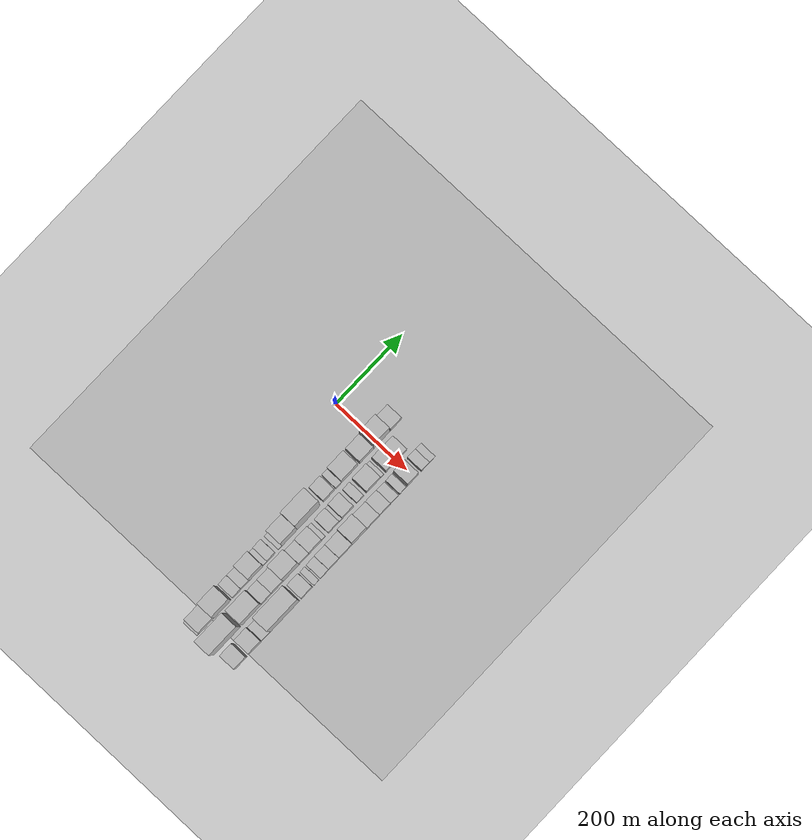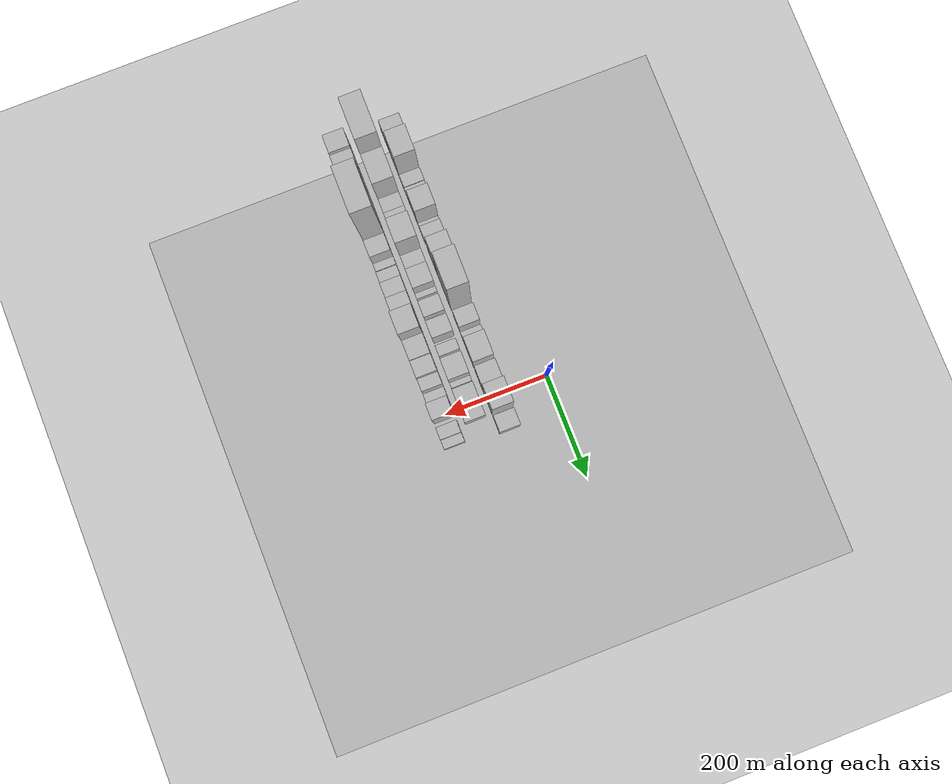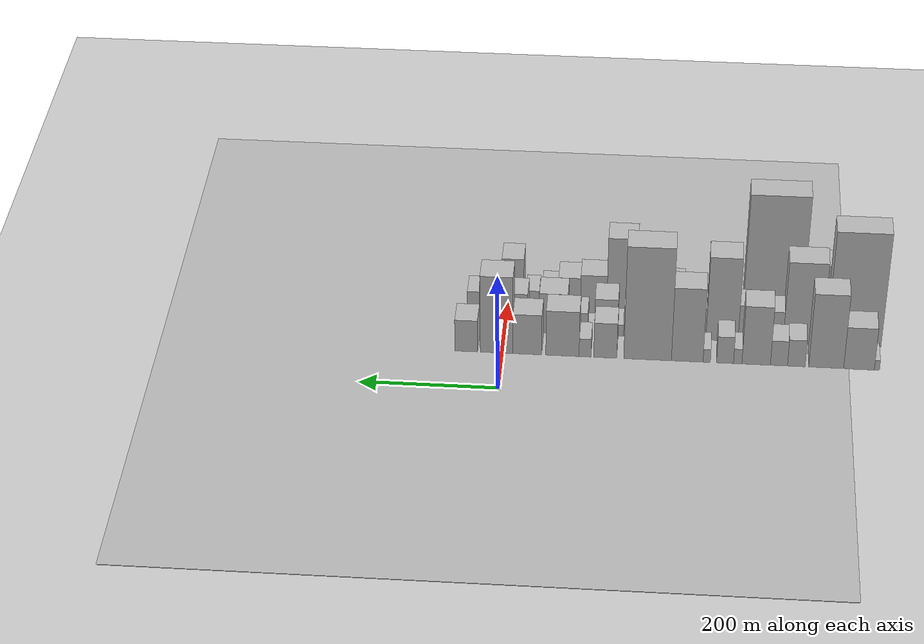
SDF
<sdf version="1.6">
 <world name="default">
  <include><name>ground_plane_1</name><uri>model://HANNAS_ground_plane</uri></include>
  <include>
   <name>ground_plane_2</name>
   <uri>model://HANNAS_ground_plane</uri>
   <pose>100 0 0  0 0 0</pose>
  </include>
  <model name="building_1">
   <static>1</static>
   <pose>100.0000 -540.2744 0 0.000000 0.000000 0.000000</pose>
   <link name="link">
    <pose>0 0 9.00 0 0 0</pose>
    <collision name="collision"><geometry><box><size>40.0000 7.4513 18.0000</size></box></geometry></collision>
    <visual name="visual">
     <cast_shadows>0</cast_shadows>
     <geometry><box><size>40.0000 7.4513 18.0000</size></box></geometry>
     <material>
      <script>
       <uri>model://HANNAS_wall/materials/scripts</uri>
       <uri>model://HANNAS_wall/materials/textures</uri>
       <name>vrc/HANNAS_wall</name>
      </script>
     </material>
    </visual>
   </link>
  </model>
  <model name="building_2">
   <static>1</static>
   <pose>100.0000 -514.5848 0 0.000000 0.000000 0.000000</pose>
   <link name="link">
    <pose>0 0 37.50 0 0 0</pose>
    <collision name="collision"><geometry><box><size>40.0000 43.9278 75.0000</size></box></geometry></collision>
    <visual name="visual">
     <cast_shadows>0</cast_shadows>
     <geometry><box><size>40.0000 43.9278 75.0000</size></box></geometry>
     <material>
      <script>
       <uri>model://HANNAS_wall/materials/scripts</uri>
       <uri>model://HANNAS_wall/materials/textures</uri>
       <name>vrc/HANNAS_wall</name>
      </script>
     </material>
    </visual>
   </link>
  </model>
  <model name="building_3">
   <static>1</static>
   <pose>100.0000 -467.5516 0 0.000000 0.000000 0.000000</pose>
   <link name="link">
    <pose>0 0 66.00 0 0 0</pose>
    <collision name="collision"><geometry><box><size>40.0000 50.1385 132.0000</size></box></geometry></collision>
    <visual name="visual">
     <cast_shadows>0</cast_shadows>
     <geometry><box><size>40.0000 50.1385 132.0000</size></box></geometry>
     <material>
      <script>
       <uri>model://HANNAS_wall/materials/scripts</uri>
       <uri>model://HANNAS_wall/materials/textures</uri>
       <name>vrc/HANNAS_wall</name>
      </script>
     </material>
    </visual>
   </link>
  </model>
  <model name="building_4">
   <static>1</static>
   <pose>100.0000 -424.7385 0 0.000000 0.000000 0.000000</pose>
   <link name="link">
    <pose>0 0 24.00 0 0 0</pose>
    <collision name="collision"><geometry><box><size>40.0000 25.4878 48.0000</size></box></geometry></collision>
    <visual name="visual">
     <cast_shadows>0</cast_shadows>
     <geometry><box><size>40.0000 25.4878 48.0000</size></box></geometry>
     <material>
      <script>
       <uri>model://HANNAS_wall/materials/scripts</uri>
       <uri>model://HANNAS_wall/materials/textures</uri>
       <name>vrc/HANNAS_wall</name>
      </script>
     </material>
    </visual>
   </link>
  </model>
  <model name="building_5">
   <static>1</static>
   <pose>100.0000 -399.7430 0 0.000000 0.000000 0.000000</pose>
   <link name="link">
    <pose>0 0 22.50 0 0 0</pose>
    <collision name="collision"><geometry><box><size>40.0000 24.5031 45.0000</size></box></geometry></collision>
    <visual name="visual">
     <cast_shadows>0</cast_shadows>
     <geometry><box><size>40.0000 24.5031 45.0000</size></box></geometry>
     <material>
      <script>
       <uri>model://HANNAS_wall/materials/scripts</uri>
       <uri>model://HANNAS_wall/materials/textures</uri>
       <name>vrc/HANNAS_wall</name>
      </script>
     </material>
    </visual>
   </link>
  </model>
  <model name="building_6">
   <static>1</static>
   <pose>100.0000 -367.0211 0 0.000000 0.000000 0.000000</pose>
   <link name="link">
    <pose>0 0 52.50 0 0 0</pose>
    <collision name="collision"><geometry><box><size>40.0000 40.9406 105.0000</size></box></geometry></collision>
    <visual name="visual">
     <cast_shadows>0</cast_shadows>
     <geometry><box><size>40.0000 40.9406 105.0000</size></box></geometry>
     <material>
      <script>
       <uri>model://HANNAS_wall/materials/scripts</uri>
       <uri>model://HANNAS_wall/materials/textures</uri>
       <name>vrc/HANNAS_wall</name>
      </script>
     </material>
    </visual>
   </link>
  </model>
  <model name="building_7">
   <static>1</static>
   <pose>100.0000 -340.4954 0 0.000000 0.000000 0.000000</pose>
   <link name="link">
    <pose>0 0 13.50 0 0 0</pose>
    <collision name="collision"><geometry><box><size>40.0000 12.1108 27.0000</size></box></geometry></collision>
    <visual name="visual">
     <cast_shadows>0</cast_shadows>
     <geometry><box><size>40.0000 12.1108 27.0000</size></box></geometry>
     <material>
      <script>
       <uri>model://HANNAS_wall/materials/scripts</uri>
       <uri>model://HANNAS_wall/materials/textures</uri>
       <name>vrc/HANNAS_wall</name>
      </script>
     </material>
    </visual>
   </link>
  </model>
  <model name="building_8">
   <static>1</static>
   <pose>100.0000 -322.2776 0 0.000000 0.000000 0.000000</pose>
   <link name="link">
    <pose>0 0 24.00 0 0 0</pose>
    <collision name="collision"><geometry><box><size>40.0000 24.3248 48.0000</size></box></geometry></collision>
    <visual name="visual">
     <cast_shadows>0</cast_shadows>
     <geometry><box><size>40.0000 24.3248 48.0000</size></box></geometry>
     <material>
      <script>
       <uri>model://HANNAS_wall/materials/scripts</uri>
       <uri>model://HANNAS_wall/materials/textures</uri>
       <name>vrc/HANNAS_wall</name>
      </script>
     </material>
    </visual>
   </link>
  </model>
  <model name="building_9">
   <static>1</static>
   <pose>100.0000 -295.8266 0 0.000000 0.000000 0.000000</pose>
   <link name="link">
    <pose>0 0 12.00 0 0 0</pose>
    <collision name="collision"><geometry><box><size>40.0000 10.5772 24.0000</size></box></geometry></collision>
    <visual name="visual">
     <cast_shadows>0</cast_shadows>
     <geometry><box><size>40.0000 10.5772 24.0000</size></box></geometry>
     <material>
      <script>
       <uri>model://HANNAS_wall/materials/scripts</uri>
       <uri>model://HANNAS_wall/materials/textures</uri>
       <name>vrc/HANNAS_wall</name>
      </script>
     </material>
    </visual>
   </link>
  </model>
  <model name="building_10">
   <static>1</static>
   <pose>100.0000 -267.7011 0 0.000000 0.000000 0.000000</pose>
   <link name="link">
    <pose>0 0 66.00 0 0 0</pose>
    <collision name="collision"><geometry><box><size>40.0000 45.6738 132.0000</size></box></geometry></collision>
    <visual name="visual">
     <cast_shadows>0</cast_shadows>
     <geometry><box><size>40.0000 45.6738 132.0000</size></box></geometry>
     <material>
      <script>
       <uri>model://HANNAS_wall/materials/scripts</uri>
       <uri>model://HANNAS_wall/materials/textures</uri>
       <name>vrc/HANNAS_wall</name>
      </script>
     </material>
    </visual>
   </link>
  </model>
  <model name="building_11">
   <static>1</static>
   <pose>100.0000 -210.4352 0 0.000000 0.000000 0.000000</pose>
   <link name="link">
    <pose>0 0 100.50 0 0 0</pose>
    <collision name="collision"><geometry><box><size>40.0000 68.8580 201.0000</size></box></geometry></collision>
    <visual name="visual">
     <cast_shadows>0</cast_shadows>
     <geometry><box><size>40.0000 68.8580 201.0000</size></box></geometry>
     <material>
      <script>
       <uri>model://HANNAS_wall/materials/scripts</uri>
       <uri>model://HANNAS_wall/materials/textures</uri>
       <name>vrc/HANNAS_wall</name>
      </script>
     </material>
    </visual>
   </link>
  </model>
  <model name="building_12">
   <static>1</static>
   <pose>100.0000 -149.3027 0 0.000000 0.000000 0.000000</pose>
   <link name="link">
    <pose>0 0 31.50 0 0 0</pose>
    <collision name="collision"><geometry><box><size>40.0000 33.4069 63.0000</size></box></geometry></collision>
    <visual name="visual">
     <cast_shadows>0</cast_shadows>
     <geometry><box><size>40.0000 33.4069 63.0000</size></box></geometry>
     <material>
      <script>
       <uri>model://HANNAS_wall/materials/scripts</uri>
       <uri>model://HANNAS_wall/materials/textures</uri>
       <name>vrc/HANNAS_wall</name>
      </script>
     </material>
    </visual>
   </link>
  </model>
  <model name="building_13">
   <static>1</static>
   <pose>100.0000 -119.9643 0 0.000000 0.000000 0.000000</pose>
   <link name="link">
    <pose>0 0 16.50 0 0 0</pose>
    <collision name="collision"><geometry><box><size>40.0000 17.2699 33.0000</size></box></geometry></collision>
    <visual name="visual">
     <cast_shadows>0</cast_shadows>
     <geometry><box><size>40.0000 17.2699 33.0000</size></box></geometry>
     <material>
      <script>
       <uri>model://HANNAS_wall/materials/scripts</uri>
       <uri>model://HANNAS_wall/materials/textures</uri>
       <name>vrc/HANNAS_wall</name>
      </script>
     </material>
    </visual>
   </link>
  </model>
  <model name="building_14">
   <static>1</static>
   <pose>100.0000 -87.2110 0 0.000000 0.000000 0.000000</pose>
   <link name="link">
    <pose>0 0 40.50 0 0 0</pose>
    <collision name="collision"><geometry><box><size>40.0000 48.2367 81.0000</size></box></geometry></collision>
    <visual name="visual">
     <cast_shadows>0</cast_shadows>
     <geometry><box><size>40.0000 48.2367 81.0000</size></box></geometry>
     <material>
      <script>
       <uri>model://HANNAS_wall/materials/scripts</uri>
       <uri>model://HANNAS_wall/materials/textures</uri>
       <name>vrc/HANNAS_wall</name>
      </script>
     </material>
    </visual>
   </link>
  </model>
  <model name="building_15">
   <static>1</static>
   <pose>100.0000 -36.2434 0 0.000000 0.000000 0.000000</pose>
   <link name="link">
    <pose>0 0 36.00 0 0 0</pose>
    <collision name="collision"><geometry><box><size>40.0000 41.6985 72.0000</size></box></geometry></collision>
    <visual name="visual">
     <cast_shadows>0</cast_shadows>
     <geometry><box><size>40.0000 41.6985 72.0000</size></box></geometry>
     <material>
      <script>
       <uri>model://HANNAS_wall/materials/scripts</uri>
       <uri>model://HANNAS_wall/materials/textures</uri>
       <name>vrc/HANNAS_wall</name>
      </script>
     </material>
    </visual>
   </link>
  </model>
  <model name="building_16">
   <static>1</static>
   <pose>100.0000 8.3210 0 0.000000 0.000000 0.000000</pose>
   <link name="link">
    <pose>0 0 69.00 0 0 0</pose>
    <collision name="collision"><geometry><box><size>40.0000 47.4301 138.0000</size></box></geometry></collision>
    <visual name="visual">
     <cast_shadows>0</cast_shadows>
     <geometry><box><size>40.0000 47.4301 138.0000</size></box></geometry>
     <material>
      <script>
       <uri>model://HANNAS_wall/materials/scripts</uri>
       <uri>model://HANNAS_wall/materials/textures</uri>
       <name>vrc/HANNAS_wall</name>
      </script>
     </material>
    </visual>
   </link>
  </model>
  <model name="building_17">
   <static>1</static>
   <pose>100.0000 52.4644 0 0.000000 0.000000 0.000000</pose>
   <link name="link">
    <pose>0 0 28.50 0 0 0</pose>
    <collision name="collision"><geometry><box><size>40.0000 32.8567 57.0000</size></box></geometry></collision>
    <visual name="visual">
     <cast_shadows>0</cast_shadows>
     <geometry><box><size>40.0000 32.8567 57.0000</size></box></geometry>
     <material>
      <script>
       <uri>model://HANNAS_wall/materials/scripts</uri>
       <uri>model://HANNAS_wall/materials/textures</uri>
       <name>vrc/HANNAS_wall</name>
      </script>
     </material>
    </visual>
   </link>
  </model>
  <model name="building_36">
   <static>1</static>
   <pose>152.0000 -508.6156 0 0.000000 0.000000 0.000000</pose>
   <link name="link">
    <pose>0 0 102.00 0 0 0</pose>
    <collision name="collision"><geometry><box><size>40.0000 78.7689 204.0000</size></box></geometry></collision>
    <visual name="visual">
     <cast_shadows>0</cast_shadows>
     <geometry><box><size>40.0000 78.7689 204.0000</size></box></geometry>
     <material>
      <script>
       <uri>model://HANNAS_wall/materials/scripts</uri>
       <uri>model://HANNAS_wall/materials/textures</uri>
       <name>vrc/HANNAS_wall</name>
      </script>
     </material>
    </visual>
   </link>
  </model>
  <model name="building_37">
   <static>1</static>
   <pose>152.0000 -434.7023 0 0.000000 0.000000 0.000000</pose>
   <link name="link">
    <pose>0 0 73.50 0 0 0</pose>
    <collision name="collision"><geometry><box><size>40.0000 57.0577 147.0000</size></box></geometry></collision>
    <visual name="visual">
     <cast_shadows>0</cast_shadows>
     <geometry><box><size>40.0000 57.0577 147.0000</size></box></geometry>
     <material>
      <script>
       <uri>model://HANNAS_wall/materials/scripts</uri>
       <uri>model://HANNAS_wall/materials/textures</uri>
       <name>vrc/HANNAS_wall</name>
      </script>
     </material>
    </visual>
   </link>
  </model>
  <model name="building_38">
   <static>1</static>
   <pose>152.0000 -390.9776 0 0.000000 0.000000 0.000000</pose>
   <link name="link">
    <pose>0 0 28.50 0 0 0</pose>
    <collision name="collision"><geometry><box><size>40.0000 30.3916 57.0000</size></box></geometry></collision>
    <visual name="visual">
     <cast_shadows>0</cast_shadows>
     <geometry><box><size>40.0000 30.3916 57.0000</size></box></geometry>
     <material>
      <script>
       <uri>model://HANNAS_wall/materials/scripts</uri>
       <uri>model://HANNAS_wall/materials/textures</uri>
       <name>vrc/HANNAS_wall</name>
      </script>
     </material>
    </visual>
   </link>
  </model>
  <model name="building_39">
   <static>1</static>
   <pose>152.0000 -358.3233 0 0.000000 0.000000 0.000000</pose>
   <link name="link">
    <pose>0 0 33.00 0 0 0</pose>
    <collision name="collision"><geometry><box><size>40.0000 34.9169 66.0000</size></box></geometry></collision>
    <visual name="visual">
     <cast_shadows>0</cast_shadows>
     <geometry><box><size>40.0000 34.9169 66.0000</size></box></geometry>
     <material>
      <script>
       <uri>model://HANNAS_wall/materials/scripts</uri>
       <uri>model://HANNAS_wall/materials/textures</uri>
       <name>vrc/HANNAS_wall</name>
      </script>
     </material>
    </visual>
   </link>
  </model>
  <model name="building_40">
   <static>1</static>
   <pose>152.0000 -317.4290 0 0.000000 0.000000 0.000000</pose>
   <link name="link">
    <pose>0 0 75.00 0 0 0</pose>
    <collision name="collision"><geometry><box><size>40.0000 46.8718 150.0000</size></box></geometry></collision>
    <visual name="visual">
     <cast_shadows>0</cast_shadows>
     <geometry><box><size>40.0000 46.8718 150.0000</size></box></geometry>
     <material>
      <script>
       <uri>model://HANNAS_wall/materials/scripts</uri>
       <uri>model://HANNAS_wall/materials/textures</uri>
       <name>vrc/HANNAS_wall</name>
      </script>
     </material>
    </visual>
   </link>
  </model>
  <model name="building_41">
   <static>1</static>
   <pose>152.0000 -278.8720 0 0.000000 0.000000 0.000000</pose>
   <link name="link">
    <pose>0 0 28.50 0 0 0</pose>
    <collision name="collision"><geometry><box><size>40.0000 30.2423 57.0000</size></box></geometry></collision>
    <visual name="visual">
     <cast_shadows>0</cast_shadows>
     <geometry><box><size>40.0000 30.2423 57.0000</size></box></geometry>
     <material>
      <script>
       <uri>model://HANNAS_wall/materials/scripts</uri>
       <uri>model://HANNAS_wall/materials/textures</uri>
       <name>vrc/HANNAS_wall</name>
      </script>
     </material>
    </visual>
   </link>
  </model>
  <model name="building_42">
   <static>1</static>
   <pose>152.0000 -244.8094 0 0.000000 0.000000 0.000000</pose>
   <link name="link">
    <pose>0 0 37.50 0 0 0</pose>
    <collision name="collision"><geometry><box><size>40.0000 37.8830 75.0000</size></box></geometry></collision>
    <visual name="visual">
     <cast_shadows>0</cast_shadows>
     <geometry><box><size>40.0000 37.8830 75.0000</size></box></geometry>
     <material>
      <script>
       <uri>model://HANNAS_wall/materials/scripts</uri>
       <uri>model://HANNAS_wall/materials/textures</uri>
       <name>vrc/HANNAS_wall</name>
      </script>
     </material>
    </visual>
   </link>
  </model>
  <model name="building_43">
   <static>1</static>
   <pose>152.0000 -220.2934 0 0.000000 0.000000 0.000000</pose>
   <link name="link">
    <pose>0 0 13.50 0 0 0</pose>
    <collision name="collision"><geometry><box><size>40.0000 11.1489 27.0000</size></box></geometry></collision>
    <visual name="visual">
     <cast_shadows>0</cast_shadows>
     <geometry><box><size>40.0000 11.1489 27.0000</size></box></geometry>
     <material>
      <script>
       <uri>model://HANNAS_wall/materials/scripts</uri>
       <uri>model://HANNAS_wall/materials/textures</uri>
       <name>vrc/HANNAS_wall</name>
      </script>
     </material>
    </visual>
   </link>
  </model>
  <model name="building_44">
   <static>1</static>
   <pose>152.0000 -189.7533 0 0.000000 0.000000 0.000000</pose>
   <link name="link">
    <pose>0 0 27.00 0 0 0</pose>
    <collision name="collision"><geometry><box><size>40.0000 31.9314 54.0000</size></box></geometry></collision>
    <visual name="visual">
     <cast_shadows>0</cast_shadows>
     <geometry><box><size>40.0000 31.9314 54.0000</size></box></geometry>
     <material>
      <script>
       <uri>model://HANNAS_wall/materials/scripts</uri>
       <uri>model://HANNAS_wall/materials/textures</uri>
       <name>vrc/HANNAS_wall</name>
      </script>
     </material>
    </visual>
   </link>
  </model>
  <model name="building_45">
   <static>1</static>
   <pose>152.0000 -169.3819 0 0.000000 0.000000 0.000000</pose>
   <link name="link">
    <pose>0 0 10.50 0 0 0</pose>
    <collision name="collision"><geometry><box><size>40.0000 8.8114 21.0000</size></box></geometry></collision>
    <visual name="visual">
     <cast_shadows>0</cast_shadows>
     <geometry><box><size>40.0000 8.8114 21.0000</size></box></geometry>
     <material>
      <script>
       <uri>model://HANNAS_wall/materials/scripts</uri>
       <uri>model://HANNAS_wall/materials/textures</uri>
       <name>vrc/HANNAS_wall</name>
      </script>
     </material>
    </visual>
   </link>
  </model>
  <model name="building_46">
   <static>1</static>
   <pose>152.0000 -148.0550 0 0.000000 0.000000 0.000000</pose>
   <link name="link">
    <pose>0 0 33.00 0 0 0</pose>
    <collision name="collision"><geometry><box><size>40.0000 33.8424 66.0000</size></box></geometry></collision>
    <visual name="visual">
     <cast_shadows>0</cast_shadows>
     <geometry><box><size>40.0000 33.8424 66.0000</size></box></geometry>
     <material>
      <script>
       <uri>model://HANNAS_wall/materials/scripts</uri>
       <uri>model://HANNAS_wall/materials/textures</uri>
       <name>vrc/HANNAS_wall</name>
      </script>
     </material>
    </visual>
   </link>
  </model>
  <model name="building_47">
   <static>1</static>
   <pose>152.0000 -110.4191 0 0.000000 0.000000 0.000000</pose>
   <link name="link">
    <pose>0 0 19.50 0 0 0</pose>
    <collision name="collision"><geometry><box><size>40.0000 21.4294 39.0000</size></box></geometry></collision>
    <visual name="visual">
     <cast_shadows>0</cast_shadows>
     <geometry><box><size>40.0000 21.4294 39.0000</size></box></geometry>
     <material>
      <script>
       <uri>model://HANNAS_wall/materials/scripts</uri>
       <uri>model://HANNAS_wall/materials/textures</uri>
       <name>vrc/HANNAS_wall</name>
      </script>
     </material>
    </visual>
   </link>
  </model>
  <model name="building_48">
   <static>1</static>
   <pose>152.0000 -70.9050 0 0.000000 0.000000 0.000000</pose>
   <link name="link">
    <pose>0 0 36.00 0 0 0</pose>
    <collision name="collision"><geometry><box><size>40.0000 41.5988 72.0000</size></box></geometry></collision>
    <visual name="visual">
     <cast_shadows>0</cast_shadows>
     <geometry><box><size>40.0000 41.5988 72.0000</size></box></geometry>
     <material>
      <script>
       <uri>model://HANNAS_wall/materials/scripts</uri>
       <uri>model://HANNAS_wall/materials/textures</uri>
       <name>vrc/HANNAS_wall</name>
      </script>
     </material>
    </visual>
   </link>
  </model>
  <model name="building_49">
   <static>1</static>
   <pose>152.0000 -44.6371 0 0.000000 0.000000 0.000000</pose>
   <link name="link">
    <pose>0 0 12.00 0 0 0</pose>
    <collision name="collision"><geometry><box><size>40.0000 10.9370 24.0000</size></box></geometry></collision>
    <visual name="visual">
     <cast_shadows>0</cast_shadows>
     <geometry><box><size>40.0000 10.9370 24.0000</size></box></geometry>
     <material>
      <script>
       <uri>model://HANNAS_wall/materials/scripts</uri>
       <uri>model://HANNAS_wall/materials/textures</uri>
       <name>vrc/HANNAS_wall</name>
      </script>
     </material>
    </visual>
   </link>
  </model>
  <model name="building_50">
   <static>1</static>
   <pose>152.0000 -14.9263 0 0.000000 0.000000 0.000000</pose>
   <link name="link">
    <pose>0 0 34.50 0 0 0</pose>
    <collision name="collision"><geometry><box><size>40.0000 36.4846 69.0000</size></box></geometry></collision>
    <visual name="visual">
     <cast_shadows>0</cast_shadows>
     <geometry><box><size>40.0000 36.4846 69.0000</size></box></geometry>
     <material>
      <script>
       <uri>model://HANNAS_wall/materials/scripts</uri>
       <uri>model://HANNAS_wall/materials/textures</uri>
       <name>vrc/HANNAS_wall</name>
      </script>
     </material>
    </visual>
   </link>
  </model>
  <model name="building_51">
   <static>1</static>
   <pose>152.0000 16.5949 0 0.000000 0.000000 0.000000</pose>
   <link name="link">
    <pose>0 0 25.50 0 0 0</pose>
    <collision name="collision"><geometry><box><size>40.0000 26.5579 51.0000</size></box></geometry></collision>
    <visual name="visual">
     <cast_shadows>0</cast_shadows>
     <geometry><box><size>40.0000 26.5579 51.0000</size></box></geometry>
     <material>
      <script>
       <uri>model://HANNAS_wall/materials/scripts</uri>
       <uri>model://HANNAS_wall/materials/textures</uri>
       <name>vrc/HANNAS_wall</name>
      </script>
     </material>
    </visual>
   </link>
  </model>
  <model name="building_71">
   <static>1</static>
   <pose>204.0000 -521.5749 0 0.000000 0.000000 0.000000</pose>
   <link name="link">
    <pose>0 0 48.00 0 0 0</pose>
    <collision name="collision"><geometry><box><size>40.0000 34.8501 96.0000</size></box></geometry></collision>
    <visual name="visual">
     <cast_shadows>0</cast_shadows>
     <geometry><box><size>40.0000 34.8501 96.0000</size></box></geometry>
     <material>
      <script>
       <uri>model://HANNAS_wall/materials/scripts</uri>
       <uri>model://HANNAS_wall/materials/textures</uri>
       <name>vrc/HANNAS_wall</name>
      </script>
     </material>
    </visual>
   </link>
  </model>
  <model name="building_72">
   <static>1</static>
   <pose>204.0000 -478.0240 0 0.000000 0.000000 0.000000</pose>
   <link name="link">
    <pose>0 0 52.50 0 0 0</pose>
    <collision name="collision"><geometry><box><size>40.0000 36.2518 105.0000</size></box></geometry></collision>
    <visual name="visual">
     <cast_shadows>0</cast_shadows>
     <geometry><box><size>40.0000 36.2518 105.0000</size></box></geometry>
     <material>
      <script>
       <uri>model://HANNAS_wall/materials/scripts</uri>
       <uri>model://HANNAS_wall/materials/textures</uri>
       <name>vrc/HANNAS_wall</name>
      </script>
     </material>
    </visual>
   </link>
  </model>
  <model name="building_73">
   <static>1</static>
   <pose>204.0000 -447.0243 0 0.000000 0.000000 0.000000</pose>
   <link name="link">
    <pose>0 0 22.50 0 0 0</pose>
    <collision name="collision"><geometry><box><size>40.0000 25.7476 45.0000</size></box></geometry></collision>
    <visual name="visual">
     <cast_shadows>0</cast_shadows>
     <geometry><box><size>40.0000 25.7476 45.0000</size></box></geometry>
     <material>
      <script>
       <uri>model://HANNAS_wall/materials/scripts</uri>
       <uri>model://HANNAS_wall/materials/textures</uri>
       <name>vrc/HANNAS_wall</name>
      </script>
     </material>
    </visual>
   </link>
  </model>
  <model name="building_74">
   <static>1</static>
   <pose>204.0000 -390.6399 0 0.000000 0.000000 0.000000</pose>
   <link name="link">
    <pose>0 0 112.50 0 0 0</pose>
    <collision name="collision"><geometry><box><size>40.0000 87.0211 225.0000</size></box></geometry></collision>
    <visual name="visual">
     <cast_shadows>0</cast_shadows>
     <geometry><box><size>40.0000 87.0211 225.0000</size></box></geometry>
     <material>
      <script>
       <uri>model://HANNAS_wall/materials/scripts</uri>
       <uri>model://HANNAS_wall/materials/textures</uri>
       <name>vrc/HANNAS_wall</name>
      </script>
     </material>
    </visual>
   </link>
  </model>
  <model name="building_75">
   <static>1</static>
   <pose>204.0000 -325.4194 0 0.000000 0.000000 0.000000</pose>
   <link name="link">
    <pose>0 0 33.00 0 0 0</pose>
    <collision name="collision"><geometry><box><size>40.0000 33.4198 66.0000</size></box></geometry></collision>
    <visual name="visual">
     <cast_shadows>0</cast_shadows>
     <geometry><box><size>40.0000 33.4198 66.0000</size></box></geometry>
     <material>
      <script>
       <uri>model://HANNAS_wall/materials/scripts</uri>
       <uri>model://HANNAS_wall/materials/textures</uri>
       <name>vrc/HANNAS_wall</name>
      </script>
     </material>
    </visual>
   </link>
  </model>
  <model name="building_76">
   <static>1</static>
   <pose>204.0000 -296.8877 0 0.000000 0.000000 0.000000</pose>
   <link name="link">
    <pose>0 0 15.00 0 0 0</pose>
    <collision name="collision"><geometry><box><size>40.0000 15.6437 30.0000</size></box></geometry></collision>
    <visual name="visual">
     <cast_shadows>0</cast_shadows>
     <geometry><box><size>40.0000 15.6437 30.0000</size></box></geometry>
     <material>
      <script>
       <uri>model://HANNAS_wall/materials/scripts</uri>
       <uri>model://HANNAS_wall/materials/textures</uri>
       <name>vrc/HANNAS_wall</name>
      </script>
     </material>
    </visual>
   </link>
  </model>
  <model name="building_77">
   <static>1</static>
   <pose>204.0000 -272.7746 0 0.000000 0.000000 0.000000</pose>
   <link name="link">
    <pose>0 0 21.00 0 0 0</pose>
    <collision name="collision"><geometry><box><size>40.0000 24.5825 42.0000</size></box></geometry></collision>
    <visual name="visual">
     <cast_shadows>0</cast_shadows>
     <geometry><box><size>40.0000 24.5825 42.0000</size></box></geometry>
     <material>
      <script>
       <uri>model://HANNAS_wall/materials/scripts</uri>
       <uri>model://HANNAS_wall/materials/textures</uri>
       <name>vrc/HANNAS_wall</name>
      </script>
     </material>
    </visual>
   </link>
  </model>
  <model name="building_78">
   <static>1</static>
   <pose>204.0000 -244.7490 0 0.000000 0.000000 0.000000</pose>
   <link name="link">
    <pose>0 0 30.00 0 0 0</pose>
    <collision name="collision"><geometry><box><size>40.0000 31.4686 60.0000</size></box></geometry></collision>
    <visual name="visual">
     <cast_shadows>0</cast_shadows>
     <geometry><box><size>40.0000 31.4686 60.0000</size></box></geometry>
     <material>
      <script>
       <uri>model://HANNAS_wall/materials/scripts</uri>
       <uri>model://HANNAS_wall/materials/textures</uri>
       <name>vrc/HANNAS_wall</name>
      </script>
     </material>
    </visual>
   </link>
  </model>
  <model name="building_79">
   <static>1</static>
   <pose>204.0000 -209.6502 0 0.000000 0.000000 0.000000</pose>
   <link name="link">
    <pose>0 0 34.50 0 0 0</pose>
    <collision name="collision"><geometry><box><size>40.0000 38.7290 69.0000</size></box></geometry></collision>
    <visual name="visual">
     <cast_shadows>0</cast_shadows>
     <geometry><box><size>40.0000 38.7290 69.0000</size></box></geometry>
     <material>
      <script>
       <uri>model://HANNAS_wall/materials/scripts</uri>
       <uri>model://HANNAS_wall/materials/textures</uri>
       <name>vrc/HANNAS_wall</name>
      </script>
     </material>
    </visual>
   </link>
  </model>
  <model name="building_80">
   <static>1</static>
   <pose>204.0000 -168.5575 0 0.000000 0.000000 0.000000</pose>
   <link name="link">
    <pose>0 0 69.00 0 0 0</pose>
    <collision name="collision"><geometry><box><size>40.0000 43.4563 138.0000</size></box></geometry></collision>
    <visual name="visual">
     <cast_shadows>0</cast_shadows>
     <geometry><box><size>40.0000 43.4563 138.0000</size></box></geometry>
     <material>
      <script>
       <uri>model://HANNAS_wall/materials/scripts</uri>
       <uri>model://HANNAS_wall/materials/textures</uri>
       <name>vrc/HANNAS_wall</name>
      </script>
     </material>
    </visual>
   </link>
  </model>
  <model name="building_81">
   <static>1</static>
   <pose>204.0000 -127.4293 0 0.000000 0.000000 0.000000</pose>
   <link name="link">
    <pose>0 0 34.50 0 0 0</pose>
    <collision name="collision"><geometry><box><size>40.0000 38.8001 69.0000</size></box></geometry></collision>
    <visual name="visual">
     <cast_shadows>0</cast_shadows>
     <geometry><box><size>40.0000 38.8001 69.0000</size></box></geometry>
     <material>
      <script>
       <uri>model://HANNAS_wall/materials/scripts</uri>
       <uri>model://HANNAS_wall/materials/textures</uri>
       <name>vrc/HANNAS_wall</name>
      </script>
     </material>
    </visual>
   </link>
  </model>
  <model name="building_82">
   <static>1</static>
   <pose>204.0000 -91.5750 0 0.000000 0.000000 0.000000</pose>
   <link name="link">
    <pose>0 0 31.50 0 0 0</pose>
    <collision name="collision"><geometry><box><size>40.0000 32.9086 63.0000</size></box></geometry></collision>
    <visual name="visual">
     <cast_shadows>0</cast_shadows>
     <geometry><box><size>40.0000 32.9086 63.0000</size></box></geometry>
     <material>
      <script>
       <uri>model://HANNAS_wall/materials/scripts</uri>
       <uri>model://HANNAS_wall/materials/textures</uri>
       <name>vrc/HANNAS_wall</name>
      </script>
     </material>
    </visual>
   </link>
  </model>
  <model name="building_83">
   <static>1</static>
   <pose>204.0000 -63.0766 0 0.000000 0.000000 0.000000</pose>
   <link name="link">
    <pose>0 0 22.50 0 0 0</pose>
    <collision name="collision"><geometry><box><size>40.0000 24.0883 45.0000</size></box></geometry></collision>
    <visual name="visual">
     <cast_shadows>0</cast_shadows>
     <geometry><box><size>40.0000 24.0883 45.0000</size></box></geometry>
     <material>
      <script>
       <uri>model://HANNAS_wall/materials/scripts</uri>
       <uri>model://HANNAS_wall/materials/textures</uri>
       <name>vrc/HANNAS_wall</name>
      </script>
     </material>
    </visual>
   </link>
  </model>
  <model name="building_84">
   <static>1</static>
   <pose>204.0000 -37.1042 0 0.000000 0.000000 0.000000</pose>
   <link name="link">
    <pose>0 0 18.00 0 0 0</pose>
    <collision name="collision"><geometry><box><size>40.0000 19.8563 36.0000</size></box></geometry></collision>
    <visual name="visual">
     <cast_shadows>0</cast_shadows>
     <geometry><box><size>40.0000 19.8563 36.0000</size></box></geometry>
     <material>
      <script>
       <uri>model://HANNAS_wall/materials/scripts</uri>
       <uri>model://HANNAS_wall/materials/textures</uri>
       <name>vrc/HANNAS_wall</name>
      </script>
     </material>
    </visual>
   </link>
  </model>
  <model name="building_85">
   <static>1</static>
   <pose>204.0000 -8.0134 0 0.000000 0.000000 0.000000</pose>
   <link name="link">
    <pose>0 0 46.50 0 0 0</pose>
    <collision name="collision"><geometry><box><size>40.0000 32.3253 93.0000</size></box></geometry></collision>
    <visual name="visual">
     <cast_shadows>0</cast_shadows>
     <geometry><box><size>40.0000 32.3253 93.0000</size></box></geometry>
     <material>
      <script>
       <uri>model://HANNAS_wall/materials/scripts</uri>
       <uri>model://HANNAS_wall/materials/textures</uri>
       <name>vrc/HANNAS_wall</name>
      </script>
     </material>
    </visual>
   </link>
  </model>
  <model name="building_86">
   <static>1</static>
   <pose>204.0000 30.0760 0 0.000000 0.000000 0.000000</pose>
   <link name="link">
    <pose>0 0 21.00 0 0 0</pose>
    <collision name="collision"><geometry><box><size>40.0000 23.8536 42.0000</size></box></geometry></collision>
    <visual name="visual">
     <cast_shadows>0</cast_shadows>
     <geometry><box><size>40.0000 23.8536 42.0000</size></box></geometry>
     <material>
      <script>
       <uri>model://HANNAS_wall/materials/scripts</uri>
       <uri>model://HANNAS_wall/materials/textures</uri>
       <name>vrc/HANNAS_wall</name>
      </script>
     </material>
    </visual>
   </link>
  </model>
  <model name="building_87">
   <static>1</static>
   <pose>204.0000 50.9001 0 0.000000 0.000000 0.000000</pose>
   <link name="link">
    <pose>0 0 15.00 0 0 0</pose>
    <collision name="collision"><geometry><box><size>40.0000 17.7945 30.0000</size></box></geometry></collision>
    <visual name="visual">
     <cast_shadows>0</cast_shadows>
     <geometry><box><size>40.0000 17.7945 30.0000</size></box></geometry>
     <material>
      <script>
       <uri>model://HANNAS_wall/materials/scripts</uri>
       <uri>model://HANNAS_wall/materials/textures</uri>
       <name>vrc/HANNAS_wall</name>
      </script>
     </material>
    </visual>
   </link>
  </model>
 </world>
</sdf>
